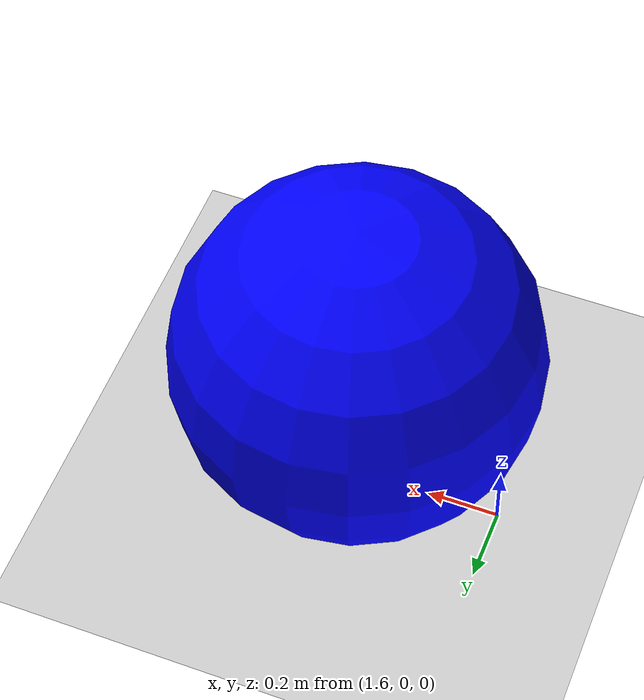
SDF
<?xml version="1.0" ?>
<sdf version="1.4">
  <!-- We use a custom world for the rrbot so that the camera angle is launched correctly -->

  <world name="default">
    <include>
      <uri>model://ground_plane</uri>
    </include>

    <!-- Global light source -->
    <include>
      <uri>model://sun</uri>
    </include>
    <model name='with_blue_ball'>
      <link name='link'>
        <inertial>
          <mass>1</mass>
          <inertia>
            <ixx>0.1</ixx>
            <ixy>0</ixy>
            <ixz>0</ixz>
            <iyy>0.1</iyy>
            <iyz>0</iyz>
            <izz>0.1</izz>
          </inertia>
          <pose frame=''>0 0 0 0 -0 0</pose>
        </inertial>
        <self_collide>0</self_collide>
        <enable_wind>0</enable_wind>
        <kinematic>0</kinematic>
        <pose frame=''>0 0 0 0 -0 0</pose>
        <gravity>1</gravity>
        <visual name='visual'>
          <geometry>
            <sphere>
              <radius>0.5</radius>
            </sphere>
          </geometry>
          <material>
            <script>
              <name>Gazebo/Grey</name>
              <uri>file://media/materials/scripts/gazebo.material</uri>
            </script>
            <ambient>0 0 1 0</ambient>
            <shader type='vertex'>
              <normal_map>__default__</normal_map>
            </shader>
            <diffuse>0.7 0.7 0.7 1</diffuse>
            <specular>0.01 0.01 0.01 1</specular>
            <emissive>0 0 0 1</emissive>
          </material>
          <pose frame=''>0 0 0 0 -0 0</pose>
          <transparency>0</transparency>
          <cast_shadows>1</cast_shadows>
        </visual>
        <collision name='collision'>
          <laser_retro>0</laser_retro>
          <max_contacts>10</max_contacts>
          <pose frame=''>0 0 0 0 -0 0</pose>
          <geometry>
            <sphere>
              <radius>0.5</radius>
            </sphere>
          </geometry>
          <surface>
            <friction>
              <ode>
                <mu>1</mu>
                <mu2>1</mu2>
                <fdir1>0 0 0</fdir1>
                <slip1>0</slip1>
                <slip2>0</slip2>
              </ode>
              <torsional>
                <coefficient>1</coefficient>
                <patch_radius>0</patch_radius>
                <surface_radius>0</surface_radius>
                <use_patch_radius>1</use_patch_radius>
                <ode>
                  <slip>0</slip>
                </ode>
              </torsional>
            </friction>
            <bounce>
              <restitution_coefficient>0</restitution_coefficient>
              <threshold>1e+06</threshold>
            </bounce>
            <contact>
              <collide_without_contact>0</collide_without_contact>
              <collide_without_contact_bitmask>1</collide_without_contact_bitmask>
              <collide_bitmask>1</collide_bitmask>
              <ode>
                <soft_cfm>0</soft_cfm>
                <soft_erp>0.2</soft_erp>
                <kp>1e+13</kp>
                <kd>1</kd>
                <max_vel>0.01</max_vel>
                <min_depth>0</min_depth>
              </ode>
              <bullet>
                <split_impulse>1</split_impulse>
                <split_impulse_penetration_threshold>-0.01</split_impulse_penetration_threshold>
                <soft_cfm>0</soft_cfm>
                <soft_erp>0.2</soft_erp>
                <kp>1e+13</kp>
                <kd>1</kd>
              </bullet>
            </contact>
          </surface>
        </collision>
      </link>
      <static>0</static>
      <allow_auto_disable>1</allow_auto_disable>
      <pose frame=''>2.02165 -0.035174 0.5 0 -0 0</pose>
    </model>
    <!-- Focus camera on tall pendulum -->
    <gui fullscreen='0'>
      <camera name='user_camera'>
        <pose>4.927360 -4.376610 3.740080 0.000000 0.275643 2.356190</pose>
        <view_controller>orbit</view_controller>
      </camera>
    </gui>

  </world>
</sdf>
